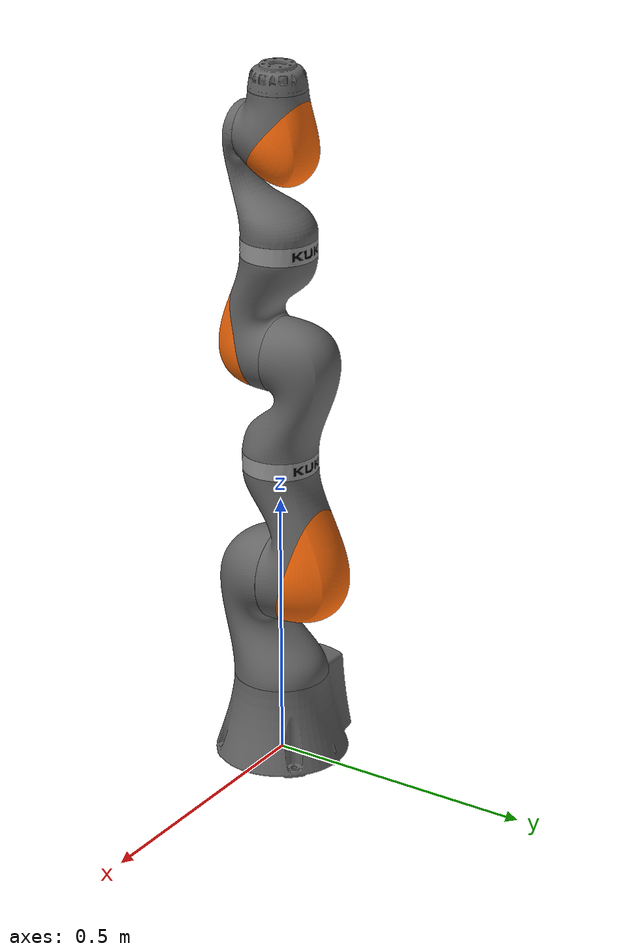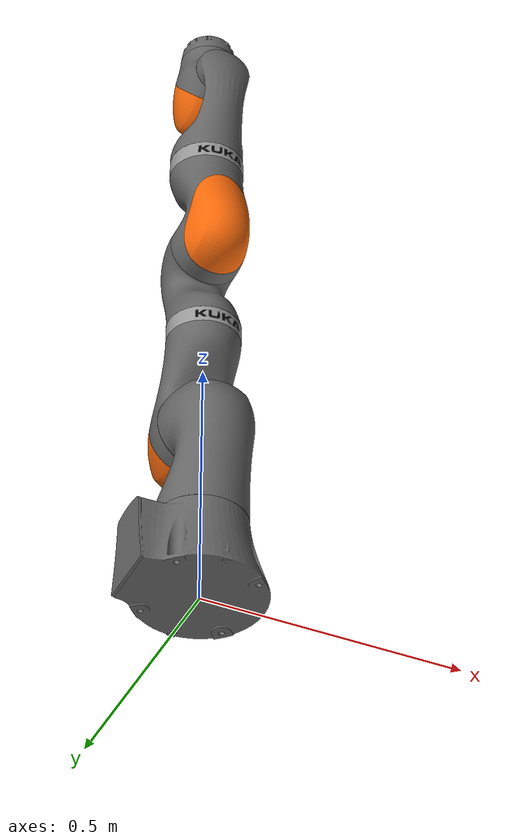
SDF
<?xml version="1.0"?>
<!--
SDF automatically generated with: gz sdf -p ../urdf/iiwa14_polytope_collision.urdf > /iiwa14_polytope_collision.sdf

Later edited by hand to rename the base link and remove damping from the joints.
-->
<sdf version="1.7">
  <model name="iiwa14">
    <link name="iiwa_link_0">
      <inertial>
        <pose>-0.1 0 0.07 0 0 0</pose>
        <mass>5</mass>
        <inertia>
          <ixx>0.05</ixx>
          <ixy>0</ixy>
          <ixz>0</ixz>
          <iyy>0.06</iyy>
          <iyz>0</iyz>
          <izz>0.03</izz>
        </inertia>
      </inertial>
      <visual name="iiwa_link_0_fixed_joint_lump__iiwa_link_0_visual">
        <geometry>
          <mesh>
            <scale>1 1 1</scale>
            <uri>package://drake/manipulation/models/iiwa_description/meshes/visual/link_0.obj</uri>
          </mesh>
        </geometry>
        <material>
          <diffuse>0.4 0.4 0.4 1.0</diffuse>
        </material>
      </visual>
      <gravity>1</gravity>
      <velocity_decay/>
      <self_collide>0</self_collide>
    </link>
    <link name="iiwa_link_1">
      <pose>0 0 0.1575 0 0 0</pose>
      <inertial>
        <pose>0 -0.03 0.12 0 0 0</pose>
        <mass>5.76</mass>
        <inertia>
          <ixx>0.033</ixx>
          <ixy>0</ixy>
          <ixz>0</ixz>
          <iyy>0.0333</iyy>
          <iyz>0</iyz>
          <izz>0.0123</izz>
        </inertia>
      </inertial>
      <visual name="iiwa_link_1_visual">
        <geometry>
          <mesh>
            <scale>1 1 1</scale>
            <uri>package://drake/manipulation/models/iiwa_description/meshes/visual/link_1.obj</uri>
          </mesh>
        </geometry>
        <material>
          <diffuse>0.4 0.4 0.4 1.0</diffuse>
        </material>
      </visual>
      <gravity>1</gravity>
      <velocity_decay/>
      <self_collide>0</self_collide>
    </link>
    <joint name="iiwa_joint_1" type="revolute">
      <child>iiwa_link_1</child>
      <parent>iiwa_link_0</parent>
      <axis>
        <xyz expressed_in="__model__">0 0 1</xyz>
        <limit>
          <lower>-2.96705972839</lower>
          <upper>2.96705972839</upper>
          <effort>320</effort>
          <velocity>1.4835298641951802</velocity>
          <drake:acceleration>8.57</drake:acceleration>
        </limit>
        <dynamics>
          <damping>0</damping>
          <friction>0</friction>
          <spring_reference>0</spring_reference>
          <spring_stiffness>0</spring_stiffness>
        </dynamics>
      </axis>
    </joint>
    <link name="iiwa_link_2">
      <pose>0 0 0.36 1.5708 0 -3.14159</pose>
      <inertial>
        <pose>0.0003 0.059 0.042 0 0 0</pose>
        <mass>6.35</mass>
        <inertia>
          <ixx>0.0305</ixx>
          <ixy>0</ixy>
          <ixz>0</ixz>
          <iyy>0.0304</iyy>
          <iyz>0</iyz>
          <izz>0.011</izz>
        </inertia>
      </inertial>
      <visual name="iiwa_link_2_visual_grey">
        <geometry>
          <mesh>
            <scale>1 1 1</scale>
            <uri>package://drake/manipulation/models/iiwa_description/meshes/visual/link_2_grey.obj</uri>
          </mesh>
        </geometry>
        <material>
          <diffuse>0.4 0.4 0.4 1.0</diffuse>
        </material>
      </visual>
      <visual name="iiwa_link_2_visual_orange">
        <geometry>
          <mesh>
            <scale>1 1 1</scale>
            <uri>package://drake/manipulation/models/iiwa_description/meshes/visual/link_2_orange.obj</uri>
          </mesh>
        </geometry>
        <material>
          <diffuse>1.0 0.423529411765 0.0392156862745 1.0</diffuse>
        </material>
      </visual>
      <gravity>1</gravity>
      <velocity_decay/>
      <self_collide>0</self_collide>
    </link>
    <joint name="iiwa_joint_2" type="revolute">
      <child>iiwa_link_2</child>
      <parent>iiwa_link_1</parent>
      <axis>
        <xyz expressed_in="__model__">-0 1 0</xyz>
        <limit>
          <lower>-2.09439510239</lower>
          <upper>2.09439510239</upper>
          <effort>320</effort>
          <velocity>1.4835298641951802</velocity>
          <drake:acceleration>8.57</drake:acceleration>
        </limit>
        <dynamics>
          <damping>0</damping>
          <friction>0</friction>
          <spring_reference>0</spring_reference>
          <spring_stiffness>0</spring_stiffness>
        </dynamics>
      </axis>
    </joint>
    <link name="iiwa_link_3">
      <pose>0 0 0.5645 0 0 0</pose>
      <inertial>
        <pose>0 0.03 0.13 0 0 0</pose>
        <mass>3.5</mass>
        <inertia>
          <ixx>0.025</ixx>
          <ixy>0</ixy>
          <ixz>0</ixz>
          <iyy>0.0238</iyy>
          <iyz>0</iyz>
          <izz>0.0076</izz>
        </inertia>
      </inertial>
      <visual name="iiwa_link_3_visual">
        <geometry>
          <mesh>
            <scale>1 1 1</scale>
            <uri>package://drake/manipulation/models/iiwa_description/meshes/visual/link_3.obj</uri>
          </mesh>
        </geometry>
        <material>
          <diffuse>0.4 0.4 0.4 1.0</diffuse>
        </material>
      </visual>
      <visual name="iiwa_link_3_visual_band">
        <geometry>
          <mesh>
            <scale>1 1 1</scale>
            <uri>package://drake/manipulation/models/iiwa_description/meshes/visual/band.obj</uri>
          </mesh>
        </geometry>
        <material>
          <diffuse>0.6 0.6 0.6 1.0</diffuse>
        </material>
      </visual>
      <visual name="iiwa_link_3_visual_kuka">
        <geometry>
          <mesh>
            <scale>1 1 1</scale>
            <uri>package://drake/manipulation/models/iiwa_description/meshes/visual/kuka.obj</uri>
          </mesh>
        </geometry>
        <material>
          <diffuse>0 0 0 1</diffuse>
        </material>
      </visual>
      <gravity>1</gravity>
      <velocity_decay/>
      <self_collide>0</self_collide>
    </link>
    <joint name="iiwa_joint_3" type="revolute">
      <child>iiwa_link_3</child>
      <parent>iiwa_link_2</parent>
      <axis>
        <xyz expressed_in="__model__">0 0 1</xyz>
        <limit>
          <lower>-2.96705972839</lower>
          <upper>2.96705972839</upper>
          <effort>176</effort>
          <velocity>1.7453292519943295</velocity>
          <drake:acceleration>8.74</drake:acceleration>
        </limit>
        <dynamics>
          <damping>0</damping>
          <friction>0</friction>
          <spring_reference>0</spring_reference>
          <spring_stiffness>0</spring_stiffness>
        </dynamics>
      </axis>
    </joint>
    <link name="iiwa_link_4">
      <pose>0 0 0.78 1.5708 0 0</pose>
      <inertial>
        <pose>0 0.067 0.034 0 0 0</pose>
        <mass>3.5</mass>
        <inertia>
          <ixx>0.017</ixx>
          <ixy>0</ixy>
          <ixz>0</ixz>
          <iyy>0.0164</iyy>
          <iyz>0</iyz>
          <izz>0.006</izz>
        </inertia>
      </inertial>
      <visual name="iiwa_link_4_visual_grey">
        <geometry>
          <mesh>
            <scale>1 1 1</scale>
            <uri>package://drake/manipulation/models/iiwa_description/meshes/visual/link_4_grey.obj</uri>
          </mesh>
        </geometry>
        <material>
          <diffuse>0.4 0.4 0.4 1.0</diffuse>
        </material>
      </visual>
      <visual name="iiwa_link_4_visual_orange">
        <geometry>
          <mesh>
            <scale>1 1 1</scale>
            <uri>package://drake/manipulation/models/iiwa_description/meshes/visual/link_4_orange.obj</uri>
          </mesh>
        </geometry>
        <material>
          <diffuse>1.0 0.423529411765 0.0392156862745 1.0</diffuse>
        </material>
      </visual>
      <gravity>1</gravity>
      <velocity_decay/>
      <self_collide>0</self_collide>
    </link>
    <joint name="iiwa_joint_4" type="revolute">
      <child>iiwa_link_4</child>
      <parent>iiwa_link_3</parent>
      <axis>
        <xyz expressed_in="__model__">0 -1 0</xyz>
        <limit>
          <lower>-2.09439510239</lower>
          <upper>2.09439510239</upper>
          <effort>176</effort>
          <velocity>1.3089969389957472</velocity>
          <drake:acceleration>11.36</drake:acceleration>
        </limit>
        <dynamics>
          <damping>0</damping>
          <friction>0</friction>
          <spring_reference>0</spring_reference>
          <spring_stiffness>0</spring_stiffness>
        </dynamics>
      </axis>
    </joint>
    <link name="iiwa_link_5">
      <pose>0 0 0.9645 0 0 -3.14159</pose>
      <inertial>
        <pose>0.0001 0.021 0.076 0 0 0</pose>
        <mass>3.5</mass>
        <inertia>
          <ixx>0.01</ixx>
          <ixy>0</ixy>
          <ixz>0</ixz>
          <iyy>0.0087</iyy>
          <iyz>0</iyz>
          <izz>0.00449</izz>
        </inertia>
      </inertial>
      <visual name="iiwa_link_5_visual">
        <geometry>
          <mesh>
            <scale>1 1 1</scale>
            <uri>package://drake/manipulation/models/iiwa_description/meshes/visual/link_5.obj</uri>
          </mesh>
        </geometry>
        <material>
          <diffuse>0.4 0.4 0.4 1.0</diffuse>
        </material>
      </visual>
      <visual name="iiwa_link_5_visual_band">
        <geometry>
          <mesh>
            <scale>1 1 1</scale>
            <uri>package://drake/manipulation/models/iiwa_description/meshes/visual/band.obj</uri>
          </mesh>
        </geometry>
        <material>
          <diffuse>0.6 0.6 0.6 1.0</diffuse>
        </material>
      </visual>
      <visual name="iiwa_link_5_visual_kuka">
        <geometry>
          <mesh>
            <scale>1 1 1</scale>
            <uri>package://drake/manipulation/models/iiwa_description/meshes/visual/kuka.obj</uri>
          </mesh>
        </geometry>
        <material>
          <diffuse>0 0 0 1</diffuse>
        </material>
      </visual>
      <gravity>1</gravity>
      <velocity_decay/>
      <self_collide>0</self_collide>
    </link>
    <joint name="iiwa_joint_5" type="revolute">
      <child>iiwa_link_5</child>
      <parent>iiwa_link_4</parent>
      <axis>
        <xyz expressed_in="__model__">0 0 1</xyz>
        <limit>
          <lower>-2.96705972839</lower>
          <upper>2.96705972839</upper>
          <effort>110</effort>
          <velocity>2.2689280275926285</velocity>
          <drake:acceleration>12.23</drake:acceleration>
        </limit>
        <dynamics>
          <damping>0</damping>
          <friction>0</friction>
          <spring_reference>0</spring_reference>
          <spring_stiffness>0</spring_stiffness>
        </dynamics>
      </axis>
    </joint>
    <link name="iiwa_link_6">
      <pose>0 0 1.18 1.5708 0 -3.14159</pose>
      <inertial>
        <pose>0 0.0006 0.0004 0 0 0</pose>
        <mass>1.8</mass>
        <inertia>
          <ixx>0.0049</ixx>
          <ixy>0</ixy>
          <ixz>0</ixz>
          <iyy>0.0047</iyy>
          <iyz>0</iyz>
          <izz>0.0036</izz>
        </inertia>
      </inertial>
      <visual name="iiwa_link_6_visual_grey">
        <geometry>
          <mesh>
            <scale>1 1 1</scale>
            <uri>package://drake/manipulation/models/iiwa_description/meshes/visual/link_6_grey.obj</uri>
          </mesh>
        </geometry>
        <material>
          <diffuse>0.4 0.4 0.4 1.0</diffuse>
        </material>
      </visual>
      <visual name="iiwa_link_6_visual_orange">
        <geometry>
          <mesh>
            <scale>1 1 1</scale>
            <uri>package://drake/manipulation/models/iiwa_description/meshes/visual/link_6_orange.obj</uri>
          </mesh>
        </geometry>
        <material>
          <diffuse>1.0 0.423529411765 0.0392156862745 1.0</diffuse>
        </material>
      </visual>
      <gravity>1</gravity>
      <velocity_decay/>
      <self_collide>0</self_collide>
    </link>
    <joint name="iiwa_joint_6" type="revolute">
      <child>iiwa_link_6</child>
      <parent>iiwa_link_5</parent>
      <axis>
        <xyz expressed_in="__model__">-0 1 -0</xyz>
        <limit>
          <lower>-2.09439510239</lower>
          <upper>2.09439510239</upper>
          <effort>40</effort>
          <velocity>2.356194490192345"</velocity>
          <drake:acceleration>15.72</drake:acceleration>
        </limit>
        <dynamics>
          <damping>0</damping>
          <friction>0</friction>
          <spring_reference>0</spring_reference>
          <spring_stiffness>0</spring_stiffness>
        </dynamics>
      </axis>
    </joint>
    <link name="iiwa_link_7">
      <pose>0 0 1.261 0 0 0</pose>
      <inertial>
        <pose>0 0 0.02 0 0 0</pose>
        <mass>1.2</mass>
        <inertia>
          <ixx>0.001</ixx>
          <ixy>0</ixy>
          <ixz>0</ixz>
          <iyy>0.001</iyy>
          <iyz>0</iyz>
          <izz>0.001</izz>
        </inertia>
      </inertial>
      <collision name="iiwa_link_7_collision">
        <geometry>
          <mesh>
            <scale>1 1 1</scale>
            <uri>package://drake/manipulation/models/iiwa_description/meshes/collision/link_7_polytope.obj</uri>
          </mesh>
        </geometry>
        <surface>
          <contact>
            <ode/>
          </contact>
          <friction>
            <ode>
              <mu>0.2</mu>
              <mu2>0.2</mu2>
            </ode>
          </friction>
        </surface>
      </collision>
      <visual name="iiwa_link_7_visual">
        <geometry>
          <mesh>
            <scale>1 1 1</scale>
            <uri>package://drake/manipulation/models/iiwa_description/meshes/visual/link_7.obj</uri>
          </mesh>
        </geometry>
        <material>
          <diffuse>0.4 0.4 0.4 1.0</diffuse>
        </material>
      </visual>
      <gravity>1</gravity>
      <velocity_decay/>
      <self_collide>0</self_collide>
    </link>
    <joint name="iiwa_joint_7" type="revolute">
      <child>iiwa_link_7</child>
      <parent>iiwa_link_6</parent>
      <axis>
        <xyz expressed_in="__model__">0 0 1</xyz>
        <limit>
          <lower>-3.05432619099</lower>
          <upper>3.05432619099</upper>
          <effort>40</effort>
          <velocity>2.356194490192345"</velocity>
          <drake:acceleration>15.72</drake:acceleration>
        </limit>
        <dynamics>
          <damping>0</damping>
          <friction>0</friction>
          <spring_reference>0</spring_reference>
          <spring_stiffness>0</spring_stiffness>
        </dynamics>
      </axis>
    </joint>
    <static>0</static>
    <plugin name="gazebo_ros_controller" filename="libgazebo_ros_control.so">
      <robotNamespace>/iiwa</robotNamespace>
    </plugin>
  </model>
</sdf>
